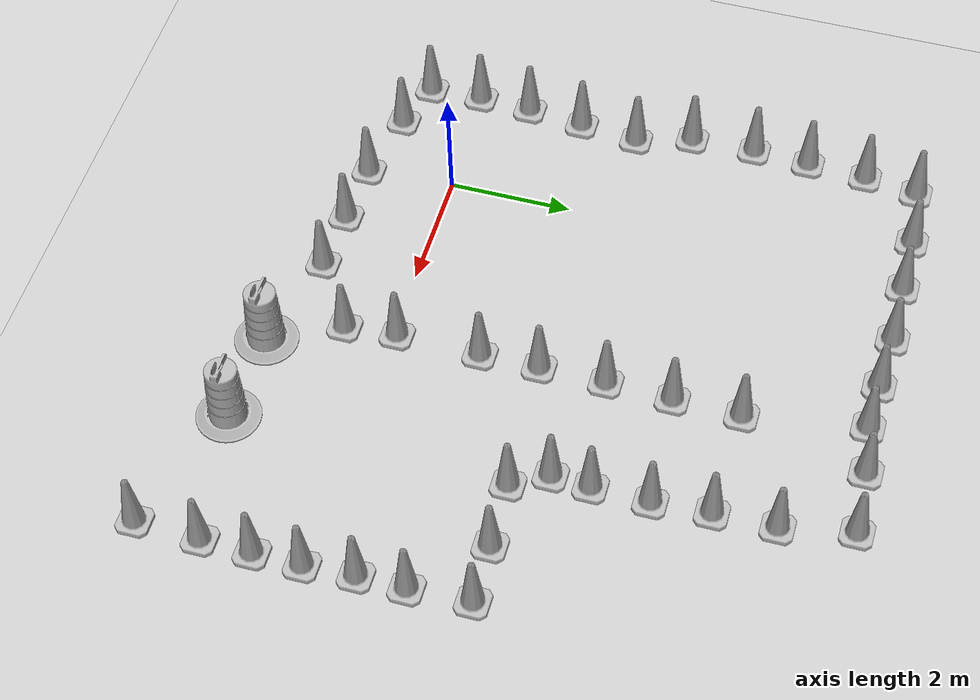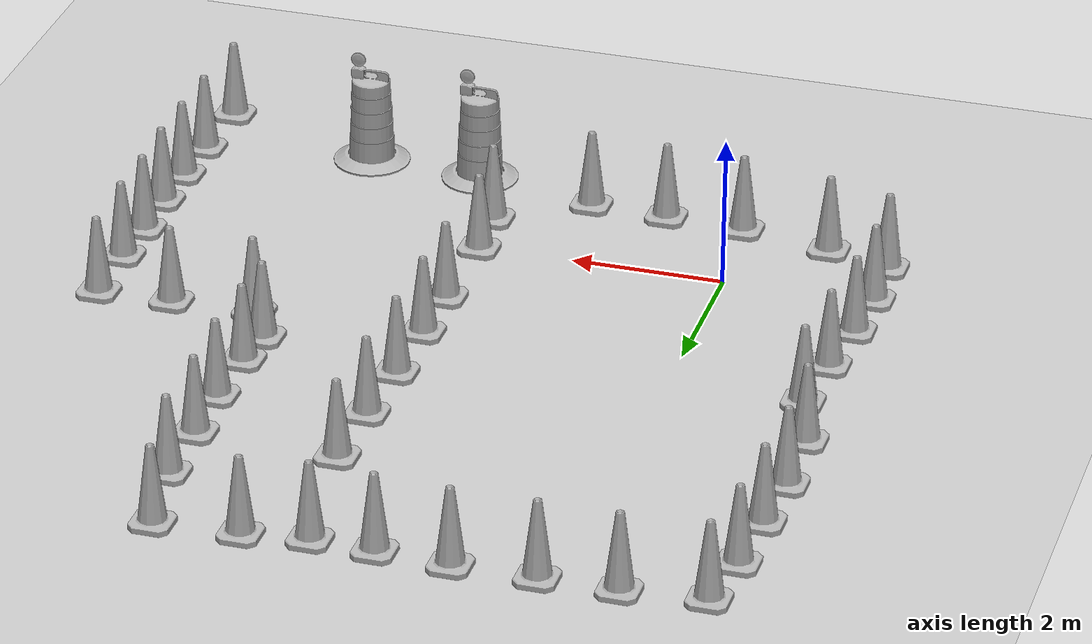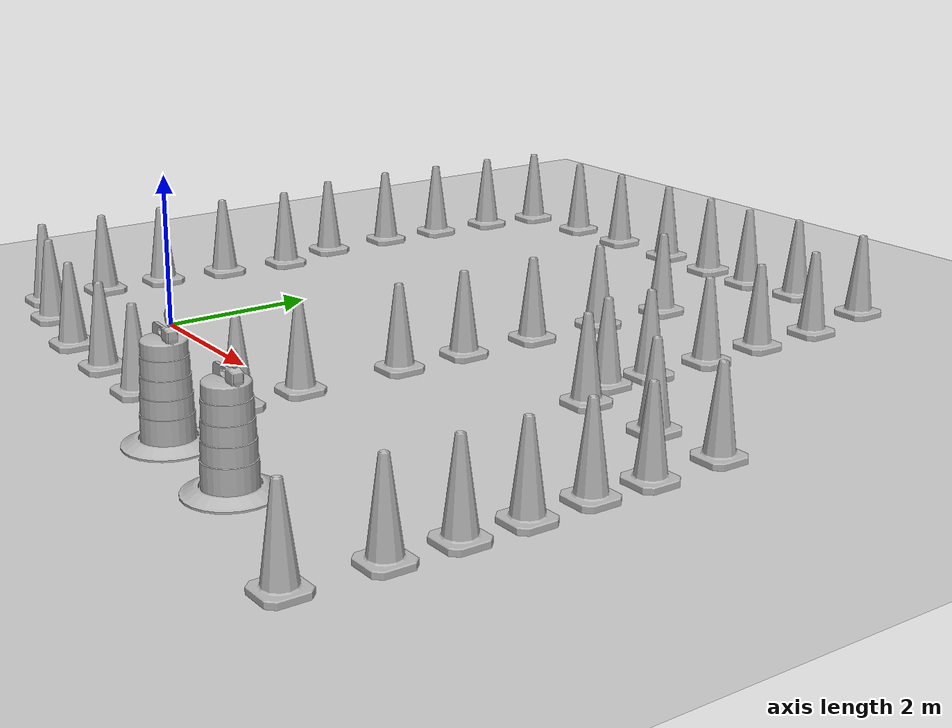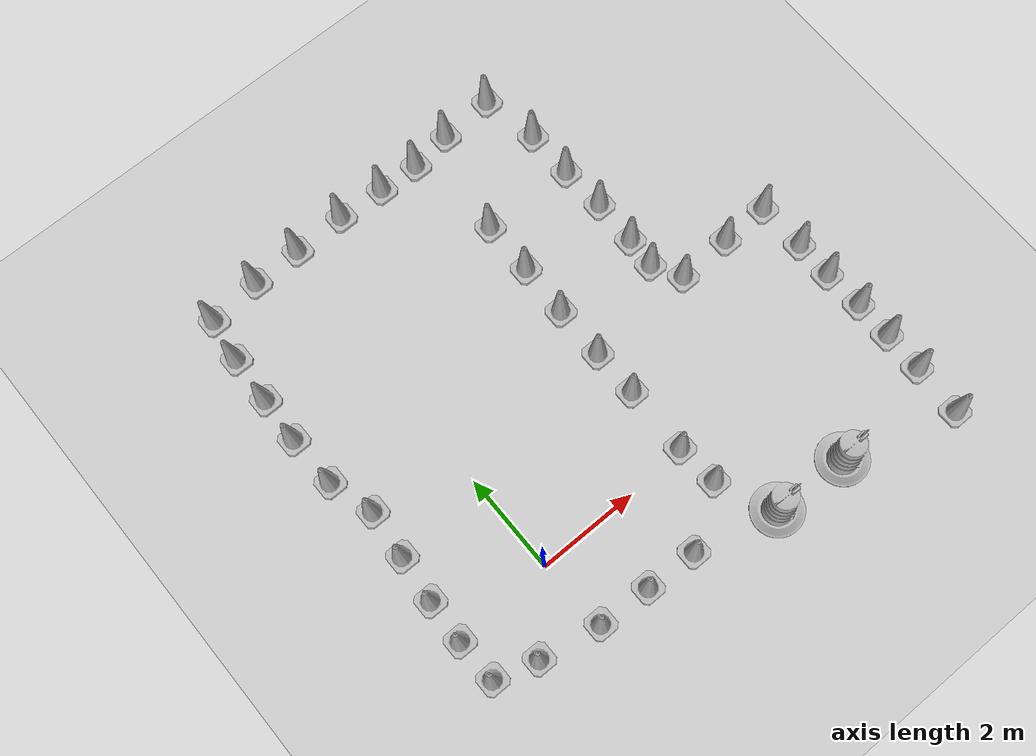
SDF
<sdf version="1.7">
 <world name="default">
  <light name="sun" type="directional">
   <pose>0 0 10 0 -0 0</pose>
   <diffuse>0.8 0.8 0.8 1</diffuse>
   <specular>0.2 0.2 0.2 1</specular>
   <attenuation>
    <range>1000</range>
    <constant>0.9</constant>
    <linear>0.01</linear>
    <quadratic>0.001</quadratic>
   </attenuation>
   <direction>-0.5 0.1 -0.9</direction>
   <spot><inner_angle>0</inner_angle><outer_angle>0</outer_angle><falloff>0</falloff></spot>
  </light>
  <model name="ground_plane">
   <static>1</static>
   <link name="link">
    <collision name="collision">
     <geometry><plane><normal>0 0 1</normal><size>100 100</size></plane></geometry>
     <surface><friction><ode><mu>100</mu><mu2>50</mu2></ode></friction></surface>
    </collision>
    <visual name="visual">
     <cast_shadows>0</cast_shadows>
     <geometry><plane><normal>0 0 1</normal><size>100 100</size></plane></geometry>
     <material>
      <script><uri>file://media/materials/scripts/gazebo.material</uri><name>Gazebo/Grey</name></script>
     </material>
    </visual>
   </link>
  </model>
  <gravity>0 0 -9.8</gravity>
  <magnetic_field>6e-06 2.3e-05 -4.2e-05</magnetic_field>
  <atmosphere type="adiabatic"/>
  <physics type="ode">
   <max_step_size>0.001</max_step_size>
   <real_time_factor>1</real_time_factor>
   <real_time_update_rate>1000</real_time_update_rate>
  </physics>
  <scene><ambient>0.4 0.4 0.4 1</ambient><background>0.7 0.7 0.7 1</background><shadows>1</shadows></scene>
  <audio><device>default</device></audio>
  <spherical_coordinates>
   <surface_model>EARTH_WGS84</surface_model>
   <latitude_deg>0</latitude_deg>
   <longitude_deg>0</longitude_deg>
   <elevation>0</elevation>
   <heading_deg>0</heading_deg>
  </spherical_coordinates>
  <model name="Construction Barrel">
   <link name="link">
    <inertial>
     <pose>0 0 0.4 0 -0 0</pose>
     <mass>500</mass>
     <inertia><ixx>51.2096</ixx><iyy>51.2096</iyy><izz>25</izz><ixy>0</ixy><ixz>0</ixz><iyz>0</iyz></inertia>
    </inertial>
    <collision name="collision">
     <geometry><mesh><uri>model://construction_barrel/meshes/construction_barrel.dae</uri></mesh></geometry>
    </collision>
    <visual name="visual">
     <geometry><mesh><uri>model://construction_barrel/meshes/construction_barrel.dae</uri></mesh></geometry>
    </visual>
   </link>
   <pose>5.33122 -1.9397 -4e-06 -5e-06 -7e-06 -7e-05</pose>
  </model>
  <model name="Construction Barrel_0">
   <link name="link">
    <inertial>
     <pose>0 0 0.4 0 -0 0</pose>
     <mass>500</mass>
     <inertia><ixx>51.2096</ixx><iyy>51.2096</iyy><izz>25</izz><ixy>0</ixy><ixz>0</ixz><iyz>0</iyz></inertia>
    </inertial>
    <collision name="collision">
     <geometry><mesh><uri>model://construction_barrel/meshes/construction_barrel.dae</uri></mesh></geometry>
    </collision>
    <visual name="visual">
     <geometry><mesh><uri>model://construction_barrel/meshes/construction_barrel.dae</uri></mesh></geometry>
    </visual>
   </link>
   <pose>3.81109 -1.87197 -0 -1e-06 -0 -0.04852</pose>
  </model>
  <model name="Construction Cone_0">
   <link name="link">
    <collision name="collision">
     <geometry>
      <mesh><scale>10 10 10</scale><uri>model://construction_cone/meshes/construction_cone.dae</uri></mesh>
     </geometry>
    </collision>
    <visual name="visual">
     <geometry>
      <mesh><scale>10 10 10</scale><uri>model://construction_cone/meshes/construction_cone.dae</uri></mesh>
     </geometry>
    </visual>
    <inertial>
     <inertia><ixx>1</ixx><ixy>0</ixy><ixz>0</ixz><iyy>1</iyy><iyz>0</iyz><izz>1</izz></inertia>
     <mass>1</mass>
    </inertial>
   </link>
   <pose>3.2197 0.083062 -0 0 -0 0</pose>
  </model>
  <model name="Construction Cone_1">
   <link name="link">
    <collision name="collision">
     <geometry>
      <mesh><scale>10 10 10</scale><uri>model://construction_cone/meshes/construction_cone.dae</uri></mesh>
     </geometry>
    </collision>
    <visual name="visual">
     <geometry>
      <mesh><scale>10 10 10</scale><uri>model://construction_cone/meshes/construction_cone.dae</uri></mesh>
     </geometry>
    </visual>
    <inertial>
     <inertia><ixx>1</ixx><ixy>0</ixy><ixz>0</ixz><iyy>1</iyy><iyz>0</iyz><izz>1</izz></inertia>
     <mass>1</mass>
    </inertial>
   </link>
   <pose>5.43195 2.52163 -1e-05 0 -0 0</pose>
  </model>
  <model name="Construction Cone_2">
   <link name="link">
    <collision name="collision">
     <geometry>
      <mesh><scale>10 10 10</scale><uri>model://construction_cone/meshes/construction_cone.dae</uri></mesh>
     </geometry>
    </collision>
    <visual name="visual">
     <geometry>
      <mesh><scale>10 10 10</scale><uri>model://construction_cone/meshes/construction_cone.dae</uri></mesh>
     </geometry>
    </visual>
    <inertial>
     <inertia><ixx>1</ixx><ixy>0</ixy><ixz>0</ixz><iyy>1</iyy><iyz>0</iyz><izz>1</izz></inertia>
     <mass>1</mass>
    </inertial>
   </link>
   <pose>6.52158 2.56301 -0 0 -0 0</pose>
  </model>
  <model name="Construction Cone_0_clone">
   <link name="link">
    <collision name="collision">
     <geometry>
      <mesh><scale>10 10 10</scale><uri>model://construction_cone/meshes/construction_cone.dae</uri></mesh>
     </geometry>
    </collision>
    <visual name="visual">
     <geometry>
      <mesh><scale>10 10 10</scale><uri>model://construction_cone/meshes/construction_cone.dae</uri></mesh>
     </geometry>
    </visual>
    <inertial>
     <inertia><ixx>1</ixx><ixy>0</ixy><ixz>0</ixz><iyy>1</iyy><iyz>0</iyz><izz>1</izz></inertia>
     <mass>1</mass>
    </inertial>
   </link>
   <pose>3.24299 1.44101 -0 0 -0 0</pose>
  </model>
  <model name="Construction Cone_0_clone_0">
   <link name="link">
    <collision name="collision">
     <geometry>
      <mesh><scale>10 10 10</scale><uri>model://construction_cone/meshes/construction_cone.dae</uri></mesh>
     </geometry>
    </collision>
    <visual name="visual">
     <geometry>
      <mesh><scale>10 10 10</scale><uri>model://construction_cone/meshes/construction_cone.dae</uri></mesh>
     </geometry>
    </visual>
    <inertial>
     <inertia><ixx>1</ixx><ixy>0</ixy><ixz>0</ixz><iyy>1</iyy><iyz>0</iyz><izz>1</izz></inertia>
     <mass>1</mass>
    </inertial>
   </link>
   <pose>7.49085 2.5883 -0 0 -0 0</pose>
  </model>
  <model name="Construction Cone_0_clone_1">
   <link name="link">
    <collision name="collision">
     <geometry>
      <mesh><scale>10 10 10</scale><uri>model://construction_cone/meshes/construction_cone.dae</uri></mesh>
     </geometry>
    </collision>
    <visual name="visual">
     <geometry>
      <mesh><scale>10 10 10</scale><uri>model://construction_cone/meshes/construction_cone.dae</uri></mesh>
     </geometry>
    </visual>
    <inertial>
     <inertia><ixx>1</ixx><ixy>0</ixy><ixz>0</ixz><iyy>1</iyy><iyz>0</iyz><izz>1</izz></inertia>
     <mass>1</mass>
    </inertial>
   </link>
   <pose>7.53001 1.60064 -0 0 -0 0</pose>
  </model>
  <model name="Construction Cone_0_clone_2">
   <link name="link">
    <collision name="collision">
     <geometry>
      <mesh><scale>10 10 10</scale><uri>model://construction_cone/meshes/construction_cone.dae</uri></mesh>
     </geometry>
    </collision>
    <visual name="visual">
     <geometry>
      <mesh><scale>10 10 10</scale><uri>model://construction_cone/meshes/construction_cone.dae</uri></mesh>
     </geometry>
    </visual>
    <inertial>
     <inertia><ixx>1</ixx><ixy>0</ixy><ixz>0</ixz><iyy>1</iyy><iyz>0</iyz><izz>1</izz></inertia>
     <mass>1</mass>
    </inertial>
   </link>
   <pose>7.52496 0.830843 -0 0 -0 0</pose>
  </model>
  <model name="Construction Cone_0_clone_3">
   <link name="link">
    <collision name="collision">
     <geometry>
      <mesh><scale>10 10 10</scale><uri>model://construction_cone/meshes/construction_cone.dae</uri></mesh>
     </geometry>
    </collision>
    <visual name="visual">
     <geometry>
      <mesh><scale>10 10 10</scale><uri>model://construction_cone/meshes/construction_cone.dae</uri></mesh>
     </geometry>
    </visual>
    <inertial>
     <inertia><ixx>1</ixx><ixy>0</ixy><ixz>0</ixz><iyy>1</iyy><iyz>0</iyz><izz>1</izz></inertia>
     <mass>1</mass>
    </inertial>
   </link>
   <pose>3.23817 2.39548 -0 0 -0 0</pose>
  </model>
  <model name="Construction Cone_0_clone_4">
   <link name="link">
    <collision name="collision">
     <geometry>
      <mesh><scale>10 10 10</scale><uri>model://construction_cone/meshes/construction_cone.dae</uri></mesh>
     </geometry>
    </collision>
    <visual name="visual">
     <geometry>
      <mesh><scale>10 10 10</scale><uri>model://construction_cone/meshes/construction_cone.dae</uri></mesh>
     </geometry>
    </visual>
    <inertial>
     <inertia><ixx>1</ixx><ixy>0</ixy><ixz>0</ixz><iyy>1</iyy><iyz>0</iyz><izz>1</izz></inertia>
     <mass>1</mass>
    </inertial>
   </link>
   <pose>3.24257 3.46161 -0 0 -0 0</pose>
  </model>
  <model name="Construction Cone_0_clone_5">
   <link name="link">
    <collision name="collision">
     <geometry>
      <mesh><scale>10 10 10</scale><uri>model://construction_cone/meshes/construction_cone.dae</uri></mesh>
     </geometry>
    </collision>
    <visual name="visual">
     <geometry>
      <mesh><scale>10 10 10</scale><uri>model://construction_cone/meshes/construction_cone.dae</uri></mesh>
     </geometry>
    </visual>
    <inertial>
     <inertia><ixx>1</ixx><ixy>0</ixy><ixz>0</ixz><iyy>1</iyy><iyz>0</iyz><izz>1</izz></inertia>
     <mass>1</mass>
    </inertial>
   </link>
   <pose>3.27864 4.52471 -0 0 -0 0</pose>
  </model>
  <model name="Construction Cone_0_clone_6">
   <link name="link">
    <collision name="collision">
     <geometry>
      <mesh><scale>10 10 10</scale><uri>model://construction_cone/meshes/construction_cone.dae</uri></mesh>
     </geometry>
    </collision>
    <visual name="visual">
     <geometry>
      <mesh><scale>10 10 10</scale><uri>model://construction_cone/meshes/construction_cone.dae</uri></mesh>
     </geometry>
    </visual>
    <inertial>
     <inertia><ixx>1</ixx><ixy>0</ixy><ixz>0</ixz><iyy>1</iyy><iyz>0</iyz><izz>1</izz></inertia>
     <mass>1</mass>
    </inertial>
   </link>
   <pose>3.29759 5.61272 -0 0 -0 0</pose>
  </model>
  <model name="Construction Cone_0_clone_7">
   <link name="link">
    <collision name="collision">
     <geometry>
      <mesh><scale>10 10 10</scale><uri>model://construction_cone/meshes/construction_cone.dae</uri></mesh>
     </geometry>
    </collision>
    <visual name="visual">
     <geometry>
      <mesh><scale>10 10 10</scale><uri>model://construction_cone/meshes/construction_cone.dae</uri></mesh>
     </geometry>
    </visual>
    <inertial>
     <inertia><ixx>1</ixx><ixy>0</ixy><ixz>0</ixz><iyy>1</iyy><iyz>0</iyz><izz>1</izz></inertia>
     <mass>1</mass>
    </inertial>
   </link>
   <pose>3.28666 -0.758929 -0 -0 -0 -0</pose>
  </model>
  <model name="Construction Cone_0_clone_8">
   <link name="link">
    <collision name="collision">
     <geometry>
      <mesh><scale>10 10 10</scale><uri>model://construction_cone/meshes/construction_cone.dae</uri></mesh>
     </geometry>
    </collision>
    <visual name="visual">
     <geometry>
      <mesh><scale>10 10 10</scale><uri>model://construction_cone/meshes/construction_cone.dae</uri></mesh>
     </geometry>
    </visual>
    <inertial>
     <inertia><ixx>1</ixx><ixy>0</ixy><ixz>0</ixz><iyy>1</iyy><iyz>0</iyz><izz>1</izz></inertia>
     <mass>1</mass>
    </inertial>
   </link>
   <pose>0.104379 -1.3982 0 -0 -0 -0</pose>
  </model>
  <model name="Construction Cone_0_clone_9">
   <link name="link">
    <collision name="collision">
     <geometry>
      <mesh><scale>10 10 10</scale><uri>model://construction_cone/meshes/construction_cone.dae</uri></mesh>
     </geometry>
    </collision>
    <visual name="visual">
     <geometry>
      <mesh><scale>10 10 10</scale><uri>model://construction_cone/meshes/construction_cone.dae</uri></mesh>
     </geometry>
    </visual>
    <inertial>
     <inertia><ixx>1</ixx><ixy>0</ixy><ixz>0</ixz><iyy>1</iyy><iyz>0</iyz><izz>1</izz></inertia>
     <mass>1</mass>
    </inertial>
   </link>
   <pose>1.14569 -1.44763 -0 0 -0 0</pose>
  </model>
  <model name="Construction Cone_0_clone_10">
   <link name="link">
    <collision name="collision">
     <geometry>
      <mesh><scale>10 10 10</scale><uri>model://construction_cone/meshes/construction_cone.dae</uri></mesh>
     </geometry>
    </collision>
    <visual name="visual">
     <geometry>
      <mesh><scale>10 10 10</scale><uri>model://construction_cone/meshes/construction_cone.dae</uri></mesh>
     </geometry>
    </visual>
    <inertial>
     <inertia><ixx>1</ixx><ixy>0</ixy><ixz>0</ixz><iyy>1</iyy><iyz>0</iyz><izz>1</izz></inertia>
     <mass>1</mass>
    </inertial>
   </link>
   <pose>2.17103 -1.49086 -0 0 -0 0</pose>
  </model>
  <model name="Construction Cone_0_clone_11">
   <link name="link">
    <collision name="collision">
     <geometry>
      <mesh><scale>10 10 10</scale><uri>model://construction_cone/meshes/construction_cone.dae</uri></mesh>
     </geometry>
    </collision>
    <visual name="visual">
     <geometry>
      <mesh><scale>10 10 10</scale><uri>model://construction_cone/meshes/construction_cone.dae</uri></mesh>
     </geometry>
    </visual>
    <inertial>
     <inertia><ixx>1</ixx><ixy>0</ixy><ixz>0</ixz><iyy>1</iyy><iyz>0</iyz><izz>1</izz></inertia>
     <mass>1</mass>
    </inertial>
   </link>
   <pose>-1.09342 -1.17384 0 0 -1e-06 0</pose>
  </model>
  <model name="Construction Cone_0_clone_12">
   <link name="link">
    <collision name="collision">
     <geometry>
      <mesh><scale>10 10 10</scale><uri>model://construction_cone/meshes/construction_cone.dae</uri></mesh>
     </geometry>
    </collision>
    <visual name="visual">
     <geometry>
      <mesh><scale>10 10 10</scale><uri>model://construction_cone/meshes/construction_cone.dae</uri></mesh>
     </geometry>
    </visual>
    <inertial>
     <inertia><ixx>1</ixx><ixy>0</ixy><ixz>0</ixz><iyy>1</iyy><iyz>0</iyz><izz>1</izz></inertia>
     <mass>1</mass>
    </inertial>
   </link>
   <pose>-1.92519 -0.928752 -1e-05 -0 -0 -0</pose>
  </model>
  <model name="Construction Cone_0_clone_13">
   <link name="link">
    <collision name="collision">
     <geometry>
      <mesh><scale>10 10 10</scale><uri>model://construction_cone/meshes/construction_cone.dae</uri></mesh>
     </geometry>
    </collision>
    <visual name="visual">
     <geometry>
      <mesh><scale>10 10 10</scale><uri>model://construction_cone/meshes/construction_cone.dae</uri></mesh>
     </geometry>
    </visual>
    <inertial>
     <inertia><ixx>1</ixx><ixy>0</ixy><ixz>0</ixz><iyy>1</iyy><iyz>0</iyz><izz>1</izz></inertia>
     <mass>1</mass>
    </inertial>
   </link>
   <pose>-1.94876 -0.061181 -0 0 -0 0</pose>
  </model>
  <model name="Construction Cone_0_clone_14">
   <link name="link">
    <collision name="collision">
     <geometry>
      <mesh><scale>10 10 10</scale><uri>model://construction_cone/meshes/construction_cone.dae</uri></mesh>
     </geometry>
    </collision>
    <visual name="visual">
     <geometry>
      <mesh><scale>10 10 10</scale><uri>model://construction_cone/meshes/construction_cone.dae</uri></mesh>
     </geometry>
    </visual>
    <inertial>
     <inertia><ixx>1</ixx><ixy>0</ixy><ixz>0</ixz><iyy>1</iyy><iyz>0</iyz><izz>1</izz></inertia>
     <mass>1</mass>
    </inertial>
   </link>
   <pose>-1.91045 0.809518 -0 0 -0 0</pose>
  </model>
  <model name="Construction Cone_0_clone_15">
   <link name="link">
    <collision name="collision">
     <geometry>
      <mesh><scale>10 10 10</scale><uri>model://construction_cone/meshes/construction_cone.dae</uri></mesh>
     </geometry>
    </collision>
    <visual name="visual">
     <geometry>
      <mesh><scale>10 10 10</scale><uri>model://construction_cone/meshes/construction_cone.dae</uri></mesh>
     </geometry>
    </visual>
    <inertial>
     <inertia><ixx>1</ixx><ixy>0</ixy><ixz>0</ixz><iyy>1</iyy><iyz>0</iyz><izz>1</izz></inertia>
     <mass>1</mass>
    </inertial>
   </link>
   <pose>-1.81248 1.74152 -0 0 -0 0</pose>
  </model>
  <model name="Construction Cone_0_clone_16">
   <link name="link">
    <collision name="collision">
     <geometry>
      <mesh><scale>10 10 10</scale><uri>model://construction_cone/meshes/construction_cone.dae</uri></mesh>
     </geometry>
    </collision>
    <visual name="visual">
     <geometry>
      <mesh><scale>10 10 10</scale><uri>model://construction_cone/meshes/construction_cone.dae</uri></mesh>
     </geometry>
    </visual>
    <inertial>
     <inertia><ixx>1</ixx><ixy>0</ixy><ixz>0</ixz><iyy>1</iyy><iyz>0</iyz><izz>1</izz></inertia>
     <mass>1</mass>
    </inertial>
   </link>
   <pose>-1.72107 2.70748 -0 0 -0 0</pose>
  </model>
  <model name="Construction Cone_0_clone_17">
   <link name="link">
    <collision name="collision">
     <geometry>
      <mesh><scale>10 10 10</scale><uri>model://construction_cone/meshes/construction_cone.dae</uri></mesh>
     </geometry>
    </collision>
    <visual name="visual">
     <geometry>
      <mesh><scale>10 10 10</scale><uri>model://construction_cone/meshes/construction_cone.dae</uri></mesh>
     </geometry>
    </visual>
    <inertial>
     <inertia><ixx>1</ixx><ixy>0</ixy><ixz>0</ixz><iyy>1</iyy><iyz>0</iyz><izz>1</izz></inertia>
     <mass>1</mass>
    </inertial>
   </link>
   <pose>-1.98189 3.61429 -0 0 -0 0</pose>
  </model>
  <model name="Construction Cone_0_clone_18">
   <link name="link">
    <collision name="collision">
     <geometry>
      <mesh><scale>10 10 10</scale><uri>model://construction_cone/meshes/construction_cone.dae</uri></mesh>
     </geometry>
    </collision>
    <visual name="visual">
     <geometry>
      <mesh><scale>10 10 10</scale><uri>model://construction_cone/meshes/construction_cone.dae</uri></mesh>
     </geometry>
    </visual>
    <inertial>
     <inertia><ixx>1</ixx><ixy>0</ixy><ixz>0</ixz><iyy>1</iyy><iyz>0</iyz><izz>1</izz></inertia>
     <mass>1</mass>
    </inertial>
   </link>
   <pose>-2.00981 4.66634 -0 0 -0 0</pose>
  </model>
  <model name="Construction Cone_0_clone_19">
   <link name="link">
    <collision name="collision">
     <geometry>
      <mesh><scale>10 10 10</scale><uri>model://construction_cone/meshes/construction_cone.dae</uri></mesh>
     </geometry>
    </collision>
    <visual name="visual">
     <geometry>
      <mesh><scale>10 10 10</scale><uri>model://construction_cone/meshes/construction_cone.dae</uri></mesh>
     </geometry>
    </visual>
    <inertial>
     <inertia><ixx>1</ixx><ixy>0</ixy><ixz>0</ixz><iyy>1</iyy><iyz>0</iyz><izz>1</izz></inertia>
     <mass>1</mass>
    </inertial>
   </link>
   <pose>-1.9616 5.59157 -0 0 -0 0</pose>
  </model>
  <model name="Construction Cone_0_clone_20">
   <link name="link">
    <collision name="collision">
     <geometry>
      <mesh><scale>10 10 10</scale><uri>model://construction_cone/meshes/construction_cone.dae</uri></mesh>
     </geometry>
    </collision>
    <visual name="visual">
     <geometry>
      <mesh><scale>10 10 10</scale><uri>model://construction_cone/meshes/construction_cone.dae</uri></mesh>
     </geometry>
    </visual>
    <inertial>
     <inertia><ixx>1</ixx><ixy>0</ixy><ixz>0</ixz><iyy>1</iyy><iyz>0</iyz><izz>1</izz></inertia>
     <mass>1</mass>
    </inertial>
   </link>
   <pose>-1.91416 6.56012 -0 0 -1e-06 0</pose>
  </model>
  <model name="Construction Cone_0_clone_21">
   <link name="link">
    <collision name="collision">
     <geometry>
      <mesh><scale>10 10 10</scale><uri>model://construction_cone/meshes/construction_cone.dae</uri></mesh>
     </geometry>
    </collision>
    <visual name="visual">
     <geometry>
      <mesh><scale>10 10 10</scale><uri>model://construction_cone/meshes/construction_cone.dae</uri></mesh>
     </geometry>
    </visual>
    <inertial>
     <inertia><ixx>1</ixx><ixy>0</ixy><ixz>0</ixz><iyy>1</iyy><iyz>0</iyz><izz>1</izz></inertia>
     <mass>1</mass>
    </inertial>
   </link>
   <pose>-1.79275 7.42737 -0 0 -1e-06 0</pose>
  </model>
  <model name="Construction Cone_0_clone_22">
   <link name="link">
    <collision name="collision">
     <geometry>
      <mesh><scale>10 10 10</scale><uri>model://construction_cone/meshes/construction_cone.dae</uri></mesh>
     </geometry>
    </collision>
    <visual name="visual">
     <geometry>
      <mesh><scale>10 10 10</scale><uri>model://construction_cone/meshes/construction_cone.dae</uri></mesh>
     </geometry>
    </visual>
    <inertial>
     <inertia><ixx>1</ixx><ixy>0</ixy><ixz>0</ixz><iyy>1</iyy><iyz>0</iyz><izz>1</izz></inertia>
     <mass>1</mass>
    </inertial>
   </link>
   <pose>-0.755252 7.53775 -0 0 -0 0</pose>
  </model>
  <model name="Construction Cone_0_clone_23">
   <link name="link">
    <collision name="collision">
     <geometry>
      <mesh><scale>10 10 10</scale><uri>model://construction_cone/meshes/construction_cone.dae</uri></mesh>
     </geometry>
    </collision>
    <visual name="visual">
     <geometry>
      <mesh><scale>10 10 10</scale><uri>model://construction_cone/meshes/construction_cone.dae</uri></mesh>
     </geometry>
    </visual>
    <inertial>
     <inertia><ixx>1</ixx><ixy>0</ixy><ixz>0</ixz><iyy>1</iyy><iyz>0</iyz><izz>1</izz></inertia>
     <mass>1</mass>
    </inertial>
   </link>
   <pose>0.220979 7.55635 -0 1e-06 -0 0</pose>
  </model>
  <model name="Construction Cone_0_clone_24">
   <link name="link">
    <collision name="collision">
     <geometry>
      <mesh><scale>10 10 10</scale><uri>model://construction_cone/meshes/construction_cone.dae</uri></mesh>
     </geometry>
    </collision>
    <visual name="visual">
     <geometry>
      <mesh><scale>10 10 10</scale><uri>model://construction_cone/meshes/construction_cone.dae</uri></mesh>
     </geometry>
    </visual>
    <inertial>
     <inertia><ixx>1</ixx><ixy>0</ixy><ixz>0</ixz><iyy>1</iyy><iyz>0</iyz><izz>1</izz></inertia>
     <mass>1</mass>
    </inertial>
   </link>
   <pose>1.26343 7.57862 -0 -0 -0 -0</pose>
  </model>
  <model name="Construction Cone_0_clone_25">
   <link name="link">
    <collision name="collision">
     <geometry>
      <mesh><scale>10 10 10</scale><uri>model://construction_cone/meshes/construction_cone.dae</uri></mesh>
     </geometry>
    </collision>
    <visual name="visual">
     <geometry>
      <mesh><scale>10 10 10</scale><uri>model://construction_cone/meshes/construction_cone.dae</uri></mesh>
     </geometry>
    </visual>
    <inertial>
     <inertia><ixx>1</ixx><ixy>0</ixy><ixz>0</ixz><iyy>1</iyy><iyz>0</iyz><izz>1</izz></inertia>
     <mass>1</mass>
    </inertial>
   </link>
   <pose>2.19827 7.53542 0 -0 -0 -0</pose>
  </model>
  <model name="Construction Cone_0_clone_26">
   <link name="link">
    <collision name="collision">
     <geometry>
      <mesh><scale>10 10 10</scale><uri>model://construction_cone/meshes/construction_cone.dae</uri></mesh>
     </geometry>
    </collision>
    <visual name="visual">
     <geometry>
      <mesh><scale>10 10 10</scale><uri>model://construction_cone/meshes/construction_cone.dae</uri></mesh>
     </geometry>
    </visual>
    <inertial>
     <inertia><ixx>1</ixx><ixy>0</ixy><ixz>0</ixz><iyy>1</iyy><iyz>0</iyz><izz>1</izz></inertia>
     <mass>1</mass>
    </inertial>
   </link>
   <pose>3 7.51045 -0 -0 -0 -0</pose>
  </model>
  <model name="Construction Cone_0_clone_27">
   <link name="link">
    <collision name="collision">
     <geometry>
      <mesh><scale>10 10 10</scale><uri>model://construction_cone/meshes/construction_cone.dae</uri></mesh>
     </geometry>
    </collision>
    <visual name="visual">
     <geometry>
      <mesh><scale>10 10 10</scale><uri>model://construction_cone/meshes/construction_cone.dae</uri></mesh>
     </geometry>
    </visual>
    <inertial>
     <inertia><ixx>1</ixx><ixy>0</ixy><ixz>0</ixz><iyy>1</iyy><iyz>0</iyz><izz>1</izz></inertia>
     <mass>1</mass>
    </inertial>
   </link>
   <pose>3.81757 7.62763 -0 0 -0 0</pose>
  </model>
  <model name="Construction Cone_0_clone_28">
   <link name="link">
    <collision name="collision">
     <geometry>
      <mesh><scale>10 10 10</scale><uri>model://construction_cone/meshes/construction_cone.dae</uri></mesh>
     </geometry>
    </collision>
    <visual name="visual">
     <geometry>
      <mesh><scale>10 10 10</scale><uri>model://construction_cone/meshes/construction_cone.dae</uri></mesh>
     </geometry>
    </visual>
    <inertial>
     <inertia><ixx>1</ixx><ixy>0</ixy><ixz>0</ixz><iyy>1</iyy><iyz>0</iyz><izz>1</izz></inertia>
     <mass>1</mass>
    </inertial>
   </link>
   <pose>4.88741 7.692 -1e-05 0 -0 0</pose>
  </model>
  <model name="Construction Cone_0_clone_31">
   <link name="link">
    <collision name="collision">
     <geometry>
      <mesh><scale>10 10 10</scale><uri>model://construction_cone/meshes/construction_cone.dae</uri></mesh>
     </geometry>
    </collision>
    <visual name="visual">
     <geometry>
      <mesh><scale>10 10 10</scale><uri>model://construction_cone/meshes/construction_cone.dae</uri></mesh>
     </geometry>
    </visual>
    <inertial>
     <inertia><ixx>1</ixx><ixy>0</ixy><ixz>0</ixz><iyy>1</iyy><iyz>0</iyz><izz>1</izz></inertia>
     <mass>1</mass>
    </inertial>
   </link>
   <pose>5.10732 6.55002 -0 0 -0 0</pose>
  </model>
  <model name="Construction Cone_0_clone_32">
   <link name="link">
    <collision name="collision">
     <geometry>
      <mesh><scale>10 10 10</scale><uri>model://construction_cone/meshes/construction_cone.dae</uri></mesh>
     </geometry>
    </collision>
    <visual name="visual">
     <geometry>
      <mesh><scale>10 10 10</scale><uri>model://construction_cone/meshes/construction_cone.dae</uri></mesh>
     </geometry>
    </visual>
    <inertial>
     <inertia><ixx>1</ixx><ixy>0</ixy><ixz>0</ixz><iyy>1</iyy><iyz>0</iyz><izz>1</izz></inertia>
     <mass>1</mass>
    </inertial>
   </link>
   <pose>5.11897 5.56344 -0 0 -0 0</pose>
  </model>
  <model name="Construction Cone_0_clone_33">
   <link name="link">
    <collision name="collision">
     <geometry>
      <mesh><scale>10 10 10</scale><uri>model://construction_cone/meshes/construction_cone.dae</uri></mesh>
     </geometry>
    </collision>
    <visual name="visual">
     <geometry>
      <mesh><scale>10 10 10</scale><uri>model://construction_cone/meshes/construction_cone.dae</uri></mesh>
     </geometry>
    </visual>
    <inertial>
     <inertia><ixx>1</ixx><ixy>0</ixy><ixz>0</ixz><iyy>1</iyy><iyz>0</iyz><izz>1</izz></inertia>
     <mass>1</mass>
    </inertial>
   </link>
   <pose>5.17245 4.64043 -0 0 -0 0</pose>
  </model>
  <model name="Construction Cone_0_clone_34">
   <link name="link">
    <collision name="collision">
     <geometry>
      <mesh><scale>10 10 10</scale><uri>model://construction_cone/meshes/construction_cone.dae</uri></mesh>
     </geometry>
    </collision>
    <visual name="visual">
     <geometry>
      <mesh><scale>10 10 10</scale><uri>model://construction_cone/meshes/construction_cone.dae</uri></mesh>
     </geometry>
    </visual>
    <inertial>
     <inertia><ixx>1</ixx><ixy>0</ixy><ixz>0</ixz><iyy>1</iyy><iyz>0</iyz><izz>1</izz></inertia>
     <mass>1</mass>
    </inertial>
   </link>
   <pose>5.1539 3.71824 -0 0 -0 0</pose>
  </model>
  <model name="Construction Cone_0_clone_35">
   <link name="link">
    <collision name="collision">
     <geometry>
      <mesh><scale>10 10 10</scale><uri>model://construction_cone/meshes/construction_cone.dae</uri></mesh>
     </geometry>
    </collision>
    <visual name="visual">
     <geometry>
      <mesh><scale>10 10 10</scale><uri>model://construction_cone/meshes/construction_cone.dae</uri></mesh>
     </geometry>
    </visual>
    <inertial>
     <inertia><ixx>1</ixx><ixy>0</ixy><ixz>0</ixz><iyy>1</iyy><iyz>0</iyz><izz>1</izz></inertia>
     <mass>1</mass>
    </inertial>
   </link>
   <pose>5.11261 3.09288 -0 0 -1e-06 0</pose>
  </model>
  <model name="Construction Cone_0_clone_36">
   <link name="link">
    <collision name="collision">
     <geometry>
      <mesh><scale>10 10 10</scale><uri>model://construction_cone/meshes/construction_cone.dae</uri></mesh>
     </geometry>
    </collision>
    <visual name="visual">
     <geometry>
      <mesh><scale>10 10 10</scale><uri>model://construction_cone/meshes/construction_cone.dae</uri></mesh>
     </geometry>
    </visual>
    <inertial>
     <inertia><ixx>1</ixx><ixy>0</ixy><ixz>0</ixz><iyy>1</iyy><iyz>0</iyz><izz>1</izz></inertia>
     <mass>1</mass>
    </inertial>
   </link>
   <pose>7.55935 -0.755033 -0 0 -0 0</pose>
  </model>
  <model name="Construction Cone_0_clone_37">
   <link name="link">
    <collision name="collision">
     <geometry>
      <mesh><scale>10 10 10</scale><uri>model://construction_cone/meshes/construction_cone.dae</uri></mesh>
     </geometry>
    </collision>
    <visual name="visual">
     <geometry>
      <mesh><scale>10 10 10</scale><uri>model://construction_cone/meshes/construction_cone.dae</uri></mesh>
     </geometry>
    </visual>
    <inertial>
     <inertia><ixx>1</ixx><ixy>0</ixy><ixz>0</ixz><iyy>1</iyy><iyz>0</iyz><izz>1</izz></inertia>
     <mass>1</mass>
    </inertial>
   </link>
   <pose>7.54271 -1.56676 -9e-06 0 -0 0</pose>
  </model>
  <model name="Construction Cone_0_clone_38">
   <link name="link">
    <collision name="collision">
     <geometry>
      <mesh><scale>10 10 10</scale><uri>model://construction_cone/meshes/construction_cone.dae</uri></mesh>
     </geometry>
    </collision>
    <visual name="visual">
     <geometry>
      <mesh><scale>10 10 10</scale><uri>model://construction_cone/meshes/construction_cone.dae</uri></mesh>
     </geometry>
    </visual>
    <inertial>
     <inertia><ixx>1</ixx><ixy>0</ixy><ixz>0</ixz><iyy>1</iyy><iyz>0</iyz><izz>1</izz></inertia>
     <mass>1</mass>
    </inertial>
   </link>
   <pose>7.49437 -2.60748 -0 0 -0 0</pose>
  </model>
  <model name="Construction Cone_0_clone_29">
   <link name="link">
    <collision name="collision">
     <geometry>
      <mesh><scale>10 10 10</scale><uri>model://construction_cone/meshes/construction_cone.dae</uri></mesh>
     </geometry>
    </collision>
    <visual name="visual">
     <geometry>
      <mesh><scale>10 10 10</scale><uri>model://construction_cone/meshes/construction_cone.dae</uri></mesh>
     </geometry>
    </visual>
    <inertial>
     <inertia><ixx>1</ixx><ixy>0</ixy><ixz>0</ixz><iyy>1</iyy><iyz>0</iyz><izz>1</izz></inertia>
     <mass>1</mass>
    </inertial>
   </link>
   <pose>7.56438 0.01934 -0 0 -1e-06 0</pose>
  </model>
 </world>
</sdf>
